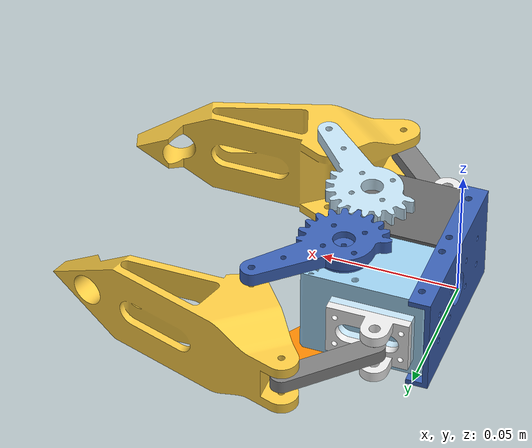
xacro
<?xml version="1.0"?>
<robot name="gripper_rviz_with_0dof" xmlns:xacro="http://www.ros.org/wiki/xacro">
    <xacro:arg name="namespace" default="my_gripper"/>

    <xacro:include filename="$(find gripper_description)/urdf/gripper_0dof.reusable.xacro"/>
    <xacro:mk_parallel_gripper_with_0dof ns="$(arg namespace)"/>

</robot>

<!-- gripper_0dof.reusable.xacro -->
<robot name="parallel_link_gripper" xmlns:xacro="http://www.ros.org/wiki/xacro">
  <xacro:macro name="mk_parallel_gripper_with_0dof" params="ns">
    <link name="${ns}/base_link" />
    <joint name="${ns}/base_link_to_base" type="fixed">
      <parent link="${ns}/base_link" />
      <child link="${ns}/body" />
      <origin rpy="0 0 0" xyz="0 0 0" />
    </joint>
    <link name="${ns}/body">
      <visual>
        <origin xyz="0.002 0 -0.017" rpy="0 0 0" />
        <geometry>
          <mesh filename="package://gripper_description/mesh/gripper_mount__list_gggmxkb4ygsnke_default.stl" />
        </geometry>
        <material name="gripper_mount__list_gggmxkb4ygsnke_default_material">
          <color rgba="0.231373 0.380392 0.705882 1.0" />
        </material>
      </visual>
      <collision>
        <origin xyz="0.0205 0 0" rpy="0 0 0" />
        <geometry>
          <box size="0.041 0.066 0.04" />
        </geometry>
      </collision>
      <collision>
        <origin xyz="0.045 0 0" rpy="0 0 0" />
        <geometry>
          <box size="0.008 0.048 0.04" />
        </geometry>
      </collision>
      <visual>
        <origin xyz="0.002 0 -0.017" rpy="0 0 0" />
        <geometry>
          <mesh filename="package://gripper_description/mesh/gripper_x430_shell_rhs__list_gggmxkb4ygsnke_default.stl" />
        </geometry>
        <material name="gripper_x430_shell_rhs__list_gggmxkb4ygsnke_default_material">
          <color rgba="0.4 0.4 0.4 1.0" />
        </material>
      </visual>
      <visual>
        <origin xyz="0.002 0 -0.017" rpy="0 0 0" />
        <geometry>
          <mesh filename="package://gripper_description/mesh/gripper_bracket_rhs__list_gggmxkb4ygsnke_default.stl" />
        </geometry>
        <material name="gripper_bracket_rhs__list_gggmxkb4ygsnke_default_material">
          <color rgba="0.917647 0.917647 0.917647 1.0" />
        </material>
      </visual>
      <collision>
        <origin xyz="0.0215 -0.034 0" rpy="0 0 0" />
        <geometry>
          <box size="0.03 0.003 0.02" />
        </geometry>
      </collision>
      <collision>
        <origin xyz="0.0173 -0.04 0" rpy="0 0 0" />
        <geometry>
          <cylinder length="0.02" radius="0.005" />
        </geometry>
      </collision>
      <visual>
        <origin xyz="0.03725 0.015 0.019" rpy="0 0 -1.5708" />
        <geometry>
          <mesh filename="package://gripper_description/mesh/dynamixel_casing__list_ndk53xfpevccij_default.stl" />
        </geometry>
        <material name="dynamixel_casing__list_ndk53xfpevccij_default_material">
          <color rgba="0.615686 0.811765 0.929412 1.0" />
        </material>
      </visual>
      <visual>
        <origin xyz="0.002 0.0615 -0.017" rpy="0 0 0" />
        <geometry>
          <mesh filename="package://gripper_description/mesh/gripper_bracket_pad__list_gggmxkb4ygsnke_default.stl" />
        </geometry>
        <material name="gripper_bracket_pad__list_gggmxkb4ygsnke_default_material">
          <color rgba="0.768627 0.886275 0.952941 1.0" />
        </material>
      </visual>
      <collision>
        <origin xyz="0.0215 0.0307 0" rpy="0 0 0" />
        <geometry>
          <box size="0.03 0.003 0.02" />
        </geometry>
      </collision>
      <visual>
        <origin xyz="0.002 0 0.017" rpy="-3.14159 0 0" />
        <geometry>
          <mesh filename="package://gripper_description/mesh/gripper_bracket_rhs__list_gggmxkb4ygsnke_default.stl" />
        </geometry>
        <material name="gripper_bracket_rhs__list_gggmxkb4ygsnke_default_material">
          <color rgba="0.917647 0.917647 0.917647 1.0" />
        </material>
      </visual>
      <collision>
        <origin xyz="0.0215 0.034 0" rpy="-3.14159 0 0" />
        <geometry>
          <box size="0.03 0.003 0.02" />
        </geometry>
      </collision>
      <collision>
        <origin xyz="0.0173 0.04 0" rpy="-3.14159 0 0" />
        <geometry>
          <cylinder length="0.02" radius="0.005" />
        </geometry>
      </collision>
      <inertial>
        <origin xyz="0.0224723 0.00874655 0.000222665" rpy="0 0 0" />
        <mass value="0.157422" />
        <inertia ixx="6.18655e-05" ixy="-4.90692e-06" ixz="1.13998e-08" iyy="5.05121e-05" iyz="-2.19198e-07" izz="7.60343e-05" />
      </inertial>
    </link>
    <link name="${ns}/lhs_inner_beam">
      <visual>
        <origin xyz="0 0.015 -0.017" rpy="0 0 3.14159" />
        <geometry>
          <mesh filename="package://gripper_description/mesh/rod_inner_lhs_top.stl" />
        </geometry>
        <material name="rod_inner_lhs_top_material">
          <color rgba="0.231373 0.380392 0.705882 1.0" />
        </material>
      </visual>
      <collision>
        <origin xyz="0 0 0.0045" rpy="0 0 3.14159" />
        <geometry>
          <cylinder length="0.005" radius="0.013" />
        </geometry>
      </collision>
      <collision>
        <origin xyz="0 -0.0195 0.0045" rpy="0 0 3.14159" />
        <geometry>
          <box size="0.01 0.039 0.005" />
        </geometry>
      </collision>
      <visual>
        <origin xyz="0 0.015 -0.024" rpy="0 0 0" />
        <geometry>
          <mesh filename="package://gripper_description/mesh/rod_inner_bottom.stl" />
        </geometry>
        <material name="rod_inner_bottom_material">
          <color rgba="0.972549 0.529412 0.00392157 1.0" />
        </material>
      </visual>
      <collision>
        <origin xyz="0 -0.02 -0.039" rpy="0 0 0" />
        <geometry>
          <box size="0.012 0.036 0.005" />
        </geometry>
      </collision>
      <collision>
        <origin xyz="0 0 -0.039" rpy="0 0 0" />
        <geometry>
          <cylinder length="0.005" radius="0.011" />
        </geometry>
      </collision>
      <visual>
        <origin xyz="0 0 0.002" rpy="0 0 0" />
        <geometry>
          <mesh filename="package://gripper_description/mesh/dynamixel_horn__list_ndk53xfpevccij_default.stl" />
        </geometry>
        <material name="dynamixel_horn__list_ndk53xfpevccij_default_material">
          <color rgba="0.231373 0.380392 0.705882 1.0" />
        </material>
      </visual>
      <inertial>
        <origin xyz="-0.000694637 -0.00752629 -0.013178" rpy="0 0 0" />
        <mass value="0.00897747" />
        <inertia ixx="5.34685e-06" ixy="4.25659e-08" ixz="1.10241e-07" iyy="4.1093e-06" iyz="-5.49535e-07" izz="1.77758e-06" />
      </inertial>
    </link>
    <link name="${ns}/lhs_claw">
      <visual>
        <origin xyz="0 -0.006 0" rpy="0 0 0" />
        <geometry>
          <mesh filename="package://gripper_description/mesh/jaw_plate.stl" />
        </geometry>
        <material name="jaw_plate_material">
          <color rgba="0.980392 0.796078 0.262745 1.0" />
        </material>
      </visual>
      <collision>
        <origin xyz="0 -0.006 0" rpy="0 0 0" />
        <geometry>
          <mesh filename="package://gripper_description/mesh/jaw_plate.stl" />
        </geometry>
        <material name="jaw_plate_material">
          <color rgba="0.980392 0.796078 0.262745 1.0" />
        </material>
      </collision>
      <inertial>
        <origin xyz="0.00954335 0.0109092 -3.55182e-09" rpy="0 0 0" />
        <mass value="0.0706194" />
        <inertia ixx="1.06828e-05" ixy="6.2682e-06" ixz="0" iyy="3.9212e-05" iyz="1.29448e-11" izz="3.75191e-05" />
      </inertial>
    </link>
    <joint name="${ns}/lhs_j3" type="fixed">
      <origin xyz="0.0 -0.035 -0.017" rpy="0.0 -0.0 -2.3561971437821385" />
      <parent link="${ns}/lhs_inner_beam" />
      <child link="${ns}/lhs_claw" />
    </joint>
    <joint name="${ns}/lhs_j1" type="fixed">
      <origin xyz="0.03725 0.015 0.017" rpy="0.0 -0.0 2.3561971437821385" />
      <parent link="${ns}/base_link" />
      <child link="${ns}/lhs_inner_beam" />
    </joint>
    <link name="${ns}/lhs_outer_beam">
      <visual>
        <origin xyz="0.02 0.025 0.0025" rpy="-3.14159 0 0" />
        <geometry>
          <mesh filename="package://gripper_description/mesh/rod_outer.stl" />
        </geometry>
        <material name="rod_outer_material">
          <color rgba="0.498039 0.498039 0.498039 1.0" />
        </material>
      </visual>
      <collision>
        <origin xyz="0 -0.0175 0" rpy="-3.14159 0 0" />
        <geometry>
          <box size="0.01 0.043 0.005" />
        </geometry>
      </collision>
      <inertial>
        <origin xyz="0 -0.0175 0" rpy="0 0 0" />
        <mass value="0.00168556" />
        <inertia ixx="2.35764e-07" ixy="0" ixz="0" iyy="1.24039e-08" iyz="0" izz="2.41145e-07" />
      </inertial>
    </link>
    <joint name="${ns}/lhs_j2" type="fixed">
      <origin xyz="0.01725 0.04 0.0" rpy="-3.1415907772184557 1.8763713373682256e-06 -0.7853981633956878" />
      <parent link="${ns}/base_link" />
      <child link="${ns}/lhs_outer_beam" />
    </joint>
    <link name="${ns}/rhs_inner_beam">
      <visual>
        <origin xyz="-0.015 0 0" rpy="0 0 1.5708" />
        <geometry>
          <mesh filename="package://gripper_description/mesh/rod_inner_rhs_top.stl" />
        </geometry>
        <material name="rod_inner_rhs_top_material">
          <color rgba="0.768627 0.886275 0.952941 1.0" />
        </material>
      </visual>
      <collision>
        <origin xyz="0 0 0.0215" rpy="0 0 1.5708" />
        <geometry>
          <cylinder length="0.005" radius="0.013" />
        </geometry>
      </collision>
      <collision>
        <origin xyz="0.0195 0 0.0215" rpy="0 0 1.5708" />
        <geometry>
          <box size="0.01 0.039 0.005" />
        </geometry>
      </collision>
      <visual>
        <origin xyz="-0.015 0 -0.007" rpy="0 0 1.5708" />
        <geometry>
          <mesh filename="package://gripper_description/mesh/rod_inner_bottom.stl" />
        </geometry>
        <material name="rod_inner_bottom_material">
          <color rgba="0.972549 0.529412 0.00392157 1.0" />
        </material>
      </visual>
      <collision>
        <origin xyz="0.02 0 -0.022" rpy="0 0 1.5708" />
        <geometry>
          <box size="0.012 0.036 0.005" />
        </geometry>
      </collision>
      <collision>
        <origin xyz="0 0 -0.022" rpy="0 0 1.5708" />
        <geometry>
          <cylinder length="0.005" radius="0.011" />
        </geometry>
      </collision>
      <inertial>
        <origin xyz="0.00901442 0.000756382 0.000852503" rpy="0 0 0" />
        <mass value="0.00744734" />
        <inertia ixx="3.68765e-06" ixy="4.3779e-08" ixz="3.57846e-07" iyy="4.8283e-06" iyz="-1.16308e-07" izz="1.61067e-06" />
      </inertial>
    </link>
    <link name="${ns}/rhs_claw">
      <visual>
        <origin xyz="0 -0.006 0" rpy="0 0 0" />
        <geometry>
          <mesh filename="package://gripper_description/mesh/jaw_plate.stl" />
        </geometry>
        <material name="jaw_plate_material">
          <color rgba="0.980392 0.796078 0.262745 1.0" />
        </material>
      </visual>
      <collision>
        <origin xyz="0 -0.006 0" rpy="0 0 0" />
        <geometry>
          <mesh filename="package://gripper_description/mesh/jaw_plate.stl" />
        </geometry>
        <material name="jaw_plate_material">
          <color rgba="0.980392 0.796078 0.262745 1.0" />
        </material>
      </collision>
      <inertial>
        <origin xyz="0.00954335 0.0109092 -3.55182e-09" rpy="0 0 0" />
        <mass value="0.0706194" />
        <inertia ixx="1.06828e-05" ixy="6.2682e-06" ixz="0" iyy="3.9212e-05" iyz="1.29448e-11" izz="3.75191e-05" />
      </inertial>
    </link>
    <joint name="${ns}/rhs_j3" type="fixed">
      <origin xyz="0.035 0.0 0.0" rpy="-3.1415907772184557 1.8763713373682254e-06 0.7854018366043121" />
      <parent link="${ns}/rhs_inner_beam" />
      <child link="${ns}/rhs_claw" />
    </joint>
    <joint name="${ns}/rhs_j1" type="fixed">
      <origin xyz="0.03725 -0.015 0.0" rpy="0.0 -0.0 -0.7854018366025517" />
      <parent link="${ns}/base_link" />
      <child link="${ns}/rhs_inner_beam" />
    </joint>
    <link name="${ns}/rhs_outer_beam">
      <visual>
        <origin xyz="0.02 0.06 0.0025" rpy="3.14159 0 0" />
        <geometry>
          <mesh filename="package://gripper_description/mesh/rod_outer.stl" />
        </geometry>
        <material name="rod_outer_material">
          <color rgba="0.498039 0.498039 0.498039 1.0" />
        </material>
      </visual>
      <collision>
        <origin xyz="0 0.0175 0" rpy="3.14159 0 0" />
        <geometry>
          <box size="0.01 0.043 0.005" />
        </geometry>
      </collision>
      <inertial>
        <origin xyz="0 0.0175 0" rpy="0 0 0" />
        <mass value="0.00168556" />
        <inertia ixx="2.35764e-07" ixy="0" ixz="0" iyy="1.24039e-08" iyz="0" izz="2.41145e-07" />
      </inertial>
    </link>
    <joint name="${ns}/rhs_j2" type="fixed">
      <origin xyz="0.01725 -0.04 0.0" rpy="-3.1415907772184557 -1.8763713373682256e-06 0.7853981633956878" />
      <parent link="${ns}/base_link" />
      <child link="${ns}/rhs_outer_beam" />
    </joint>
  </xacro:macro>
</robot>
